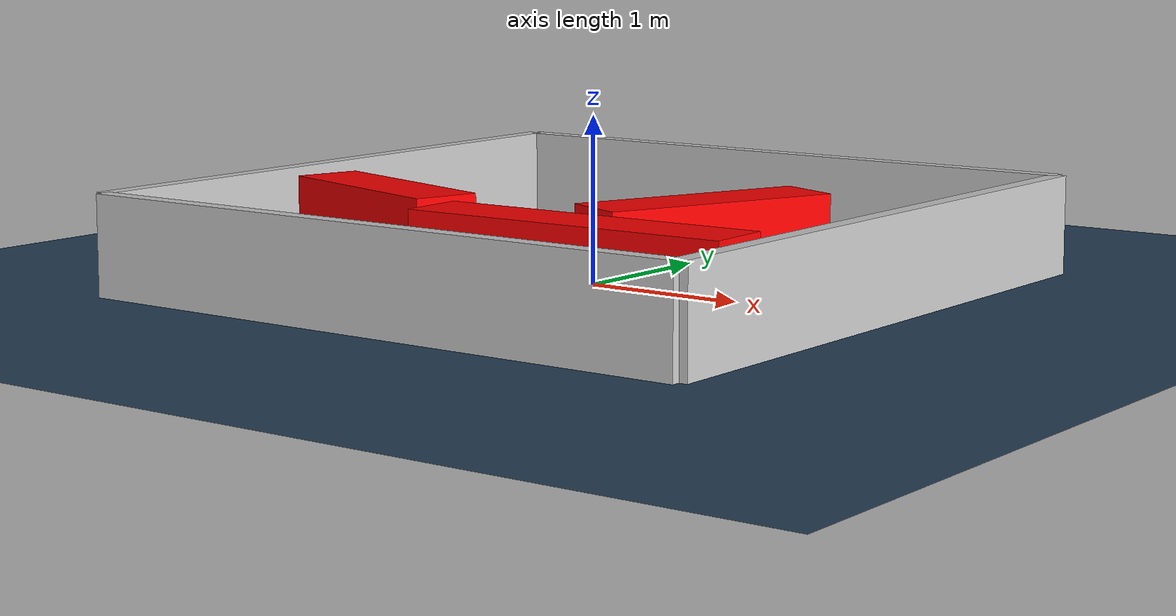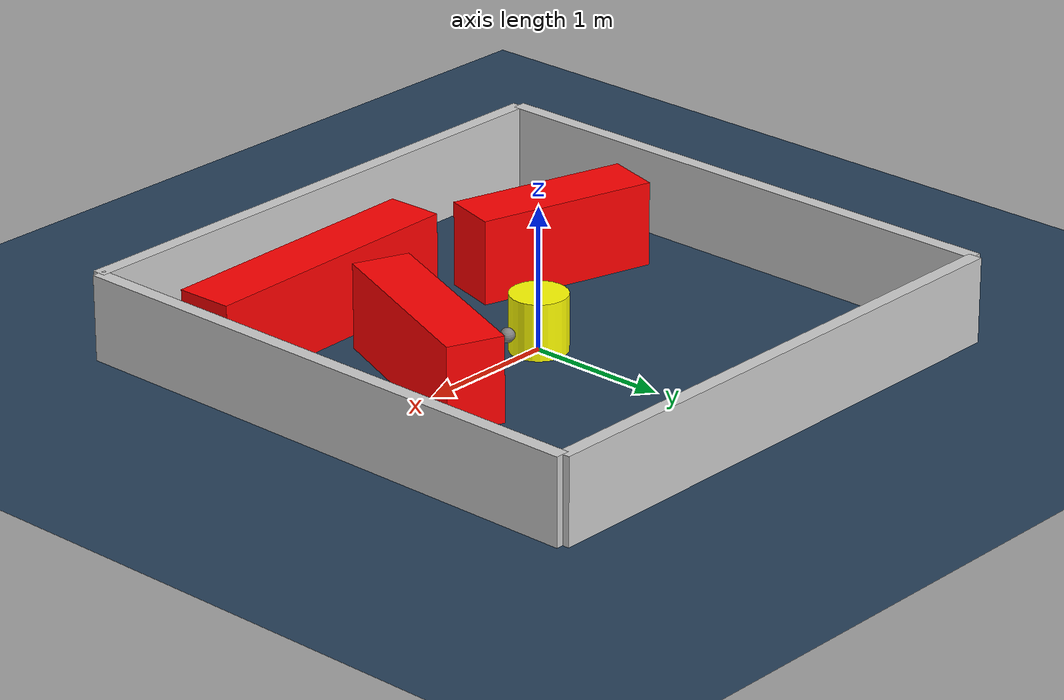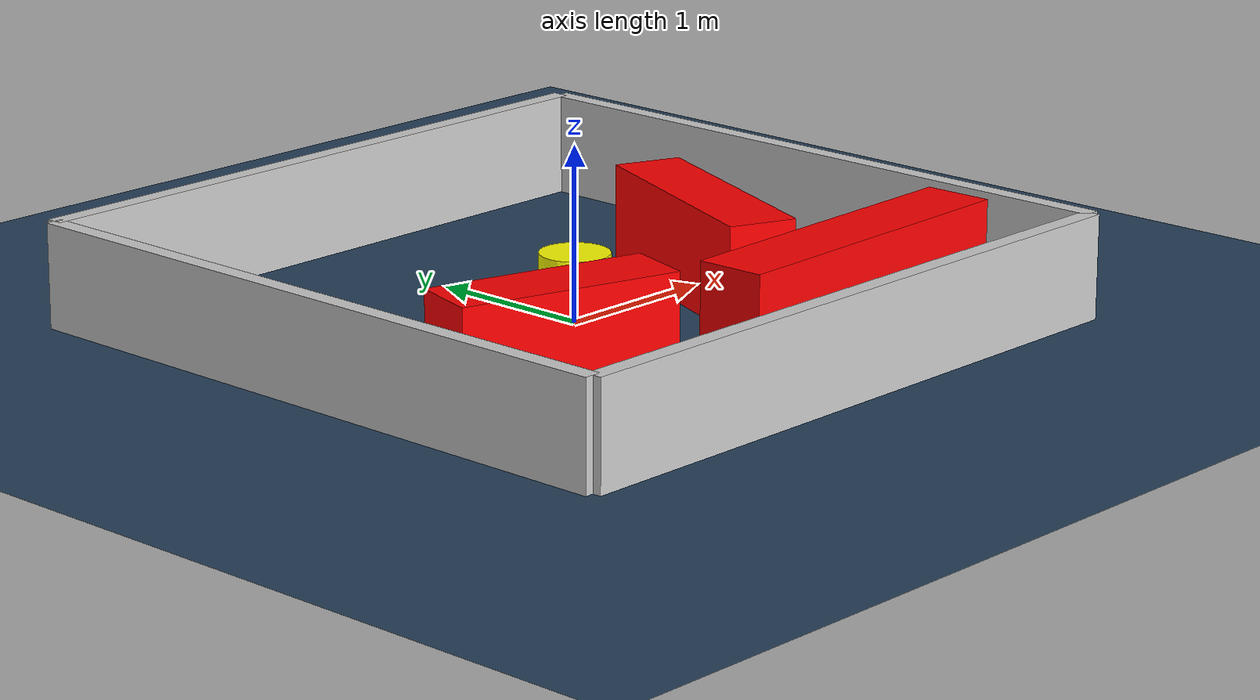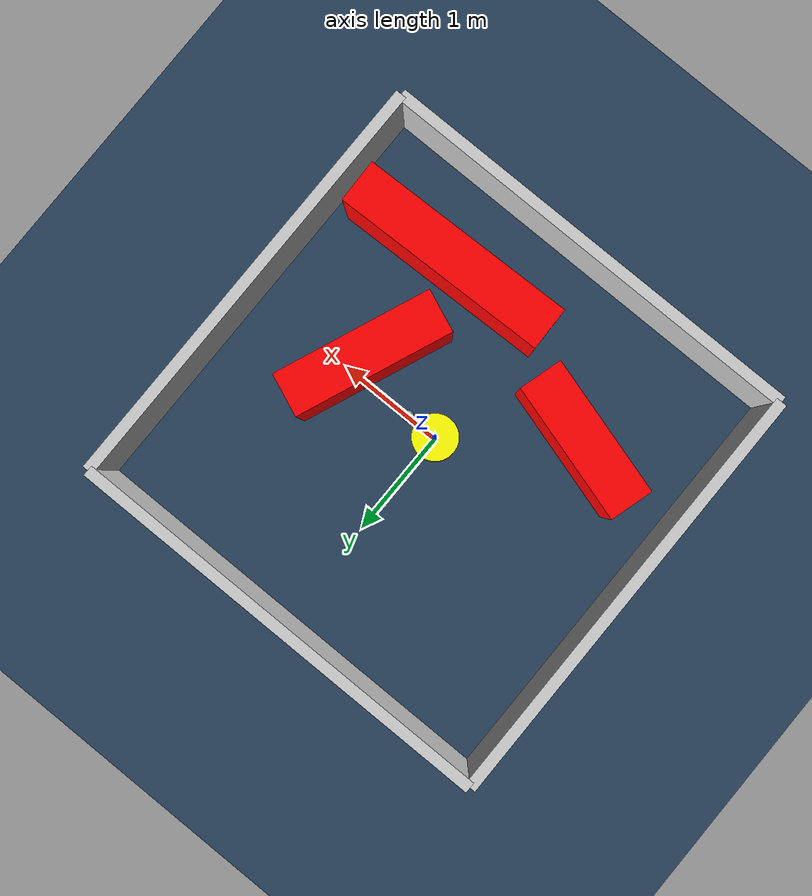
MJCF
<?xml version="1.0" ?>
<mujoco model="generated_environment">
  <option timestep="0.01" integrator="RK4" cone="elliptic"/>
  <default>
    <geom density="1"/>
  </default>
  <asset>
    <texture builtin="gradient" height="3072" rgb1="0.3 0.5 0.7" rgb2="0 0 0" type="skybox" width="512"/>
    <texture builtin="checker" height="300" mark="edge" markrgb="0.8 0.8 0.8" name="groundplane" rgb1="0.2 0.3 0.4" rgb2="0.1 0.2 0.3" type="2d" width="300"/>
    <material name="groundplane" reflectance="0.2" texrepeat="5 5" texture="groundplane" texuniform="true"/>
    <material name="robot" rgba="0.0 1.0 0.0 1"/>
  </asset>
  <worldbody>
    <light dir="0 0 -1" directional="true" pos="0 0 1.5"/>
    <geom condim="4" friction="1.0 0.005 0.001" material="groundplane" name="floor" size="0 0 0.05" type="plane"/>
    <body name="walls">
      <geom name="wall_1" condim="4" pos="-2.0 0.0 0.3" rgba="0.800000011920929 0.800000011920929 0.800000011920929 1.0" size="0.05 2.0 0.3" type="box"/>
      <geom name="wall_2" condim="4" pos="2.0 0.0 0.3" rgba="0.800000011920929 0.800000011920929 0.800000011920929 1.0" size="0.05 2.0 0.3" type="box"/>
      <geom name="wall_3" condim="4" pos="0.0 -2.0 0.3" rgba="0.800000011920929 0.800000011920929 0.800000011920929 1.0" size="2.0 0.05 0.3" type="box"/>
      <geom name="wall_4" condim="4" pos="0.0 2.0 0.3" rgba="0.800000011920929 0.800000011920929 0.800000011920929 1.0" size="2.0 0.05 0.3" type="box"/>
    </body>
    <body name="robot">
      <joint name="joint_x" type="slide" pos="0 0 0" axis="1 0 0"/>
      <joint name="joint_y" type="slide" pos="0 0 0" axis="0 1 0"/>
      <geom name="robot" type="sphere" pos="0.3 0.0 0.2" size="0.05" mass="5." friction="1.0 0.005 0.0001" condim="4" rgba="0.5 0.5 0.5 1.0"/>
      <site name="sensor_ball"/>
    </body>
    <body name="obstacle_movable_1">
      <geom name="obstacle_movable_1" condim="4" pos="0.0 0.0 0.2" euler="0 0 0.0" friction="1.0 0.005 0.001" rgba="1.0 1.0 0.0 1.0" size="0.2 0.2 0.0" type="cylinder" mass="0.1"/>
      <joint type="free"/>
    </body>
    <body name="obstacle_2_static">
      <geom name="obstacle_2_static" condim="4" pos="0.8274864762474066 -1.2409658811159514 0.3" euler="0 0 1.5201542438092508" friction="1.0 0.005 0.001" rgba="1 0 0 1" size="0.9979957680429727 0.2 0.3" type="box"/>
    </body>
    <body name="obstacle_3_static">
      <geom name="obstacle_3_static" condim="4" pos="-0.9636143434511004 -0.7527129183314971 0.3" euler="0 0 163.89789206024366" friction="1.0 0.005 0.001" rgba="1 0 0 1" size="0.6476263518804264 0.2 0.3" type="box"/>
    </body>
    <body name="obstacle_4_static">
      <geom name="obstacle_4_static" condim="4" pos="0.8870231912555575 -0.15183137320835005 0.3" euler="0 0 67.84647912785618" friction="1.0 0.005 0.001" rgba="1 0 0 1" size="0.7275216398916526 0.2 0.3" type="box"/>
    </body>
  </worldbody>
  <actuator>
    <motor name="actuator_x" joint="joint_x" gear="1" ctrlrange="-1 1"/>
    <motor name="actuator_y" joint="joint_y" gear="1" ctrlrange="-1 1"/>
  </actuator>
</mujoco>
